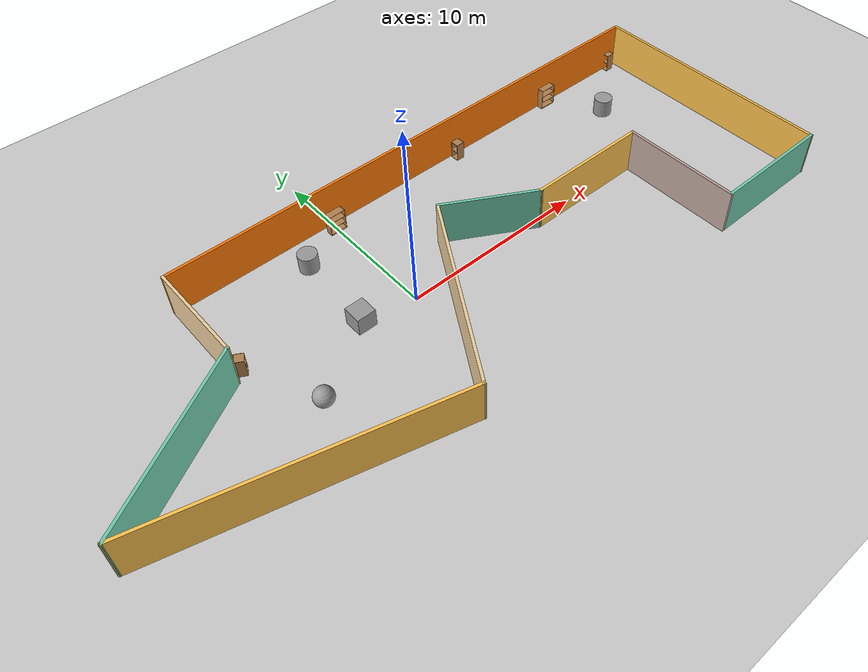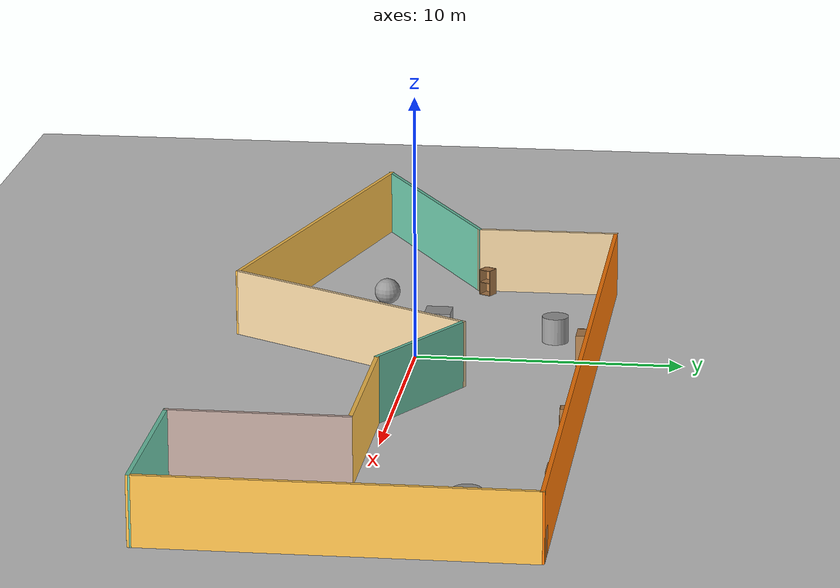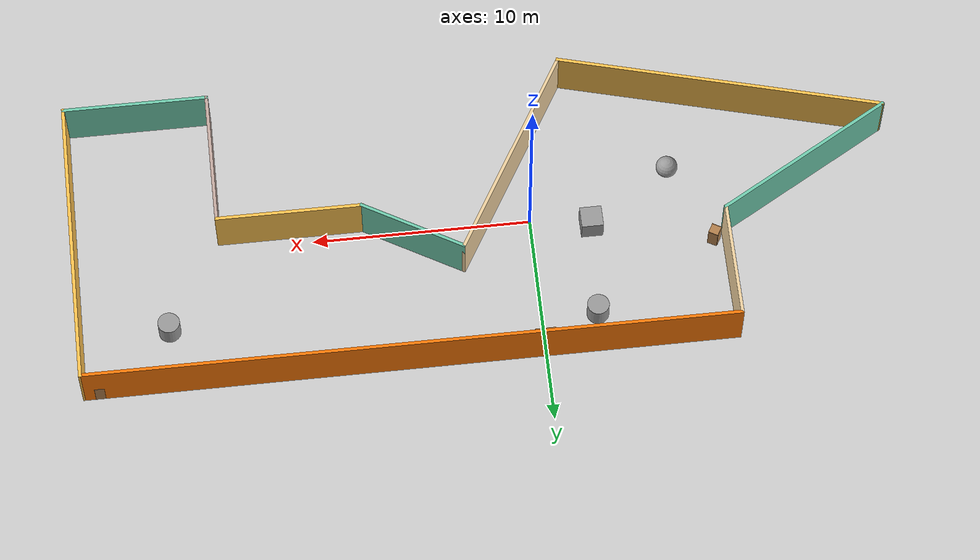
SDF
<sdf version="1.6">
 <world name="default">
  <light name="sun" type="directional">
   <pose>0 0 10 0 -0 0</pose>
   <diffuse>0.8 0.8 0.8 1</diffuse>
   <specular>0.2 0.2 0.2 1</specular>
   <attenuation>
    <range>1000</range>
    <constant>0.9</constant>
    <linear>0.01</linear>
    <quadratic>0.001</quadratic>
   </attenuation>
   <direction>-0.5 0.1 -0.9</direction>
  </light>
  <model name="ground_plane">
   <static>1</static>
   <link name="link">
    <collision name="collision">
     <geometry><plane><normal>0 0 1</normal><size>100 100</size></plane></geometry>
     <surface>
      <contact><collide_bitmask>65535</collide_bitmask></contact>
      <friction><ode><mu>100</mu><mu2>50</mu2></ode></friction>
     </surface>
    </collision>
    <visual name="visual">
     <cast_shadows>0</cast_shadows>
     <geometry><plane><normal>0 0 1</normal><size>100 100</size></plane></geometry>
     <material>
      <script><uri>file://media/materials/scripts/gazebo.material</uri><name>Gazebo/Grey</name></script>
     </material>
    </visual>
   </link>
  </model>
  <gravity>0 0 -9.8</gravity>
  <magnetic_field>6e-06 2.3e-05 -4.2e-05</magnetic_field>
  <atmosphere type="adiabatic"/>
  <physics name="default_physics" default="0" type="ode">
   <max_step_size>0.001</max_step_size>
   <real_time_factor>1</real_time_factor>
   <real_time_update_rate>1000</real_time_update_rate>
  </physics>
  <scene><ambient>0.4 0.4 0.4 1</ambient><background>0.7 0.7 0.7 1</background><shadows>1</shadows></scene>
  <spherical_coordinates>
   <surface_model>EARTH_WGS84</surface_model>
   <latitude_deg>0</latitude_deg>
   <longitude_deg>0</longitude_deg>
   <elevation>0</elevation>
   <heading_deg>0</heading_deg>
  </spherical_coordinates>
  <model name="new_building">
   <pose>2.0966 -0.12931 0 0 -0 0</pose>
   <link name="Wall_10">
    <collision name="Wall_10_Collision">
     <geometry><box><size>6.75 0.15 2.5</size></box></geometry>
     <pose>0 0 1.25 0 -0 0</pose>
    </collision>
    <visual name="Wall_10_Visual">
     <pose>0 0 1.25 0 -0 0</pose>
     <geometry><box><size>6.75 0.15 2.5</size></box></geometry>
     <material>
      <script><uri>file://media/materials/scripts/gazebo.material</uri><name>Gazebo/Grey</name></script>
      <ambient>0.435294 0.796078 0.67451 1</ambient>
     </material>
     <meta><layer>0</layer></meta>
    </visual>
    <pose>15.4648 -6.61055 0 0 -0 0</pose>
   </link>
   <link name="Wall_11">
    <collision name="Wall_11_Collision">
     <geometry><box><size>13.6783 0.15 2.5</size></box></geometry>
     <pose>0 0 1.25 0 -0 0</pose>
    </collision>
    <visual name="Wall_11_Visual">
     <pose>0 0 1.25 0 -0 0</pose>
     <geometry><box><size>13.6783 0.15 2.5</size></box></geometry>
     <material>
      <script><uri>file://media/materials/scripts/gazebo.material</uri><name>Gazebo/Grey</name></script>
      <ambient>1 0.764706 0.305882 1</ambient>
     </material>
     <meta><layer>0</layer></meta>
    </visual>
    <pose>18.7541 0.153601 0 0 -0 1.57238</pose>
   </link>
   <link name="Wall_2">
    <collision name="Wall_2_Collision">
     <geometry><box><size>29.75 0.15 2.5</size></box></geometry>
     <pose>0 0 1.25 0 -0 0</pose>
    </collision>
    <visual name="Wall_2_Visual">
     <pose>0 0 1.25 0 -0 0</pose>
     <geometry><box><size>29.75 0.15 2.5</size></box></geometry>
     <material>
      <script><uri>file://media/materials/scripts/gazebo.material</uri><name>Gazebo/Grey</name></script>
      <ambient>0.996078 0.47451 0.0196078 1</ambient>
     </material>
     <meta><layer>0</layer></meta>
    </visual>
    <pose>3.94339 6.91775 0 0 -0 3.14159</pose>
   </link>
   <link name="Wall_3">
    <collision name="Wall_3_Collision">
     <geometry><box><size>5.5 0.15 2.5</size></box></geometry>
     <pose>0 0 1.25 0 -0 0</pose>
    </collision>
    <visual name="Wall_3_Visual">
     <pose>0 0 1.25 0 -0 0</pose>
     <geometry><box><size>5.5 0.15 2.5</size></box></geometry>
     <material>
      <script><uri>file://media/materials/scripts/gazebo.material</uri><name>Gazebo/Grey</name></script>
      <ambient>0.921569 0.807843 0.615686 1</ambient>
     </material>
     <meta><layer>0</layer></meta>
    </visual>
    <pose>-10.8566 4.24275 0 0 0 -1.5708</pose>
   </link>
   <link name="Wall_4">
    <collision name="Wall_4_Collision">
     <geometry><box><size>9.25 0.15 2.5</size></box></geometry>
     <pose>0 0 1.25 0 -0 0</pose>
    </collision>
    <visual name="Wall_4_Visual">
     <pose>0 0 1.25 0 -0 0</pose>
     <geometry><box><size>9.25 0.15 2.5</size></box></geometry>
     <material>
      <script><uri>file://media/materials/scripts/gazebo.material</uri><name>Gazebo/Grey</name></script>
      <ambient>0.435294 0.796078 0.67451 1</ambient>
     </material>
     <meta><layer>0</layer></meta>
    </visual>
    <pose>-14.797 -0.70725 0 0 0 -2.61799</pose>
   </link>
   <link name="Wall_5">
    <collision name="Wall_5_Collision">
     <geometry><box><size>15.25 0.15 2.5</size></box></geometry>
     <pose>0 0 1.25 0 -0 0</pose>
    </collision>
    <visual name="Wall_5_Visual">
     <pose>0 0 1.25 0 -0 0</pose>
     <geometry><box><size>15.25 0.15 2.5</size></box></geometry>
     <material>
      <script><uri>file://media/materials/scripts/gazebo.material</uri><name>Gazebo/Grey</name></script>
      <ambient>1 0.764706 0.305882 1</ambient>
     </material>
     <meta><layer>0</layer></meta>
    </visual>
    <pose>-11.4447 -4.93633 0 0 0 -0.261799</pose>
   </link>
   <link name="Wall_6">
    <collision name="Wall_6_Collision">
     <geometry><box><size>10.75 0.15 2.5</size></box></geometry>
     <pose>0 0 1.25 0 -0 0</pose>
    </collision>
    <visual name="Wall_6_Visual">
     <pose>0 0 1.25 0 -0 0</pose>
     <geometry><box><size>10.75 0.15 2.5</size></box></geometry>
     <material>
      <script><uri>file://media/materials/scripts/gazebo.material</uri><name>Gazebo/Grey</name></script>
      <ambient>0.921569 0.807843 0.615686 1</ambient>
     </material>
     <meta><layer>0</layer></meta>
    </visual>
    <pose>-1.50196 -2.30048 0 0 -0 1.0472</pose>
   </link>
   <link name="Wall_7">
    <collision name="Wall_7_Collision">
     <geometry><box><size>5.25 0.15 2.5</size></box></geometry>
     <pose>0 0 1.25 0 -0 0</pose>
    </collision>
    <visual name="Wall_7_Visual">
     <pose>0 0 1.25 0 -0 0</pose>
     <geometry><box><size>5.25 0.15 2.5</size></box></geometry>
     <material>
      <script><uri>file://media/materials/scripts/gazebo.material</uri><name>Gazebo/Grey</name></script>
      <ambient>0.435294 0.796078 0.67451 1</ambient>
     </material>
     <meta><layer>0</layer></meta>
    </visual>
    <pose>3.35641 1.01445 0 0 0 -0.523599</pose>
   </link>
   <link name="Wall_8">
    <collision name="Wall_8_Collision">
     <geometry><box><size>6.75 0.15 2.5</size></box></geometry>
     <pose>0 0 1.25 0 -0 0</pose>
    </collision>
    <visual name="Wall_8_Visual">
     <pose>0 0 1.25 0 -0 0</pose>
     <geometry><box><size>6.75 0.15 2.5</size></box></geometry>
     <material>
      <script><uri>file://media/materials/scripts/gazebo.material</uri><name>Gazebo/Grey</name></script>
      <ambient>1 0.764706 0.305882 1</ambient>
     </material>
     <meta><layer>0</layer></meta>
    </visual>
    <pose>8.86477 -0.260548 0 0 -0 0</pose>
   </link>
   <link name="Wall_9">
    <collision name="Wall_9_Collision">
     <geometry><box><size>6.5 0.15 2.5</size></box></geometry>
     <pose>0 0 1.25 0 -0 0</pose>
    </collision>
    <visual name="Wall_9_Visual">
     <pose>0 0 1.25 0 -0 0</pose>
     <geometry><box><size>6.5 0.15 2.5</size></box></geometry>
     <material>
      <script><uri>file://media/materials/scripts/gazebo.material</uri><name>Gazebo/Grey</name></script>
      <ambient>0.760784 0.662745 0.627451 1</ambient>
     </material>
     <meta><layer>0</layer></meta>
    </visual>
    <pose>12.1648 -3.43555 0 0 0 -1.5708</pose>
   </link>
   <static>1</static>
  </model>
  <model name="unit_sphere">
   <pose>-6.57109 -1.93598 0.5 0 -0 0</pose>
   <link name="link">
    <inertial>
     <mass>1</mass>
     <inertia><ixx>0.1</ixx><ixy>0</ixy><ixz>0</ixz><iyy>0.1</iyy><iyz>0</iyz><izz>0.1</izz></inertia>
    </inertial>
    <collision name="collision"><geometry><sphere><radius>0.5</radius></sphere></geometry></collision>
    <visual name="visual">
     <geometry><sphere><radius>0.5</radius></sphere></geometry>
     <material>
      <script><name>Gazebo/Grey</name><uri>file://media/materials/scripts/gazebo.material</uri></script>
     </material>
    </visual>
   </link>
  </model>
  <model name="unit_cylinder">
   <pose>16.8196 3.87686 0.499997 3e-06 2e-06 0</pose>
   <link name="link">
    <inertial>
     <mass>1</mass>
     <inertia><ixx>0.145833</ixx><ixy>0</ixy><ixz>0</ixz><iyy>0.145833</iyy><iyz>0</iyz><izz>0.125</izz></inertia>
    </inertial>
    <collision name="collision">
     <geometry><cylinder><radius>0.5</radius><length>1</length></cylinder></geometry>
    </collision>
    <visual name="visual">
     <geometry><cylinder><radius>0.5</radius><length>1</length></cylinder></geometry>
     <material>
      <script><name>Gazebo/Grey</name><uri>file://media/materials/scripts/gazebo.material</uri></script>
     </material>
    </visual>
   </link>
  </model>
  <model name="cabinet">
   <static>1</static>
   <link name="cabinet_bottom_plate">
    <inertial>
     <pose>0 0 -1 0 -0 0</pose>
     <inertia><ixx>2.05</ixx><ixy>0</ixy><ixz>0</ixz><iyy>2.05</iyy><iyz>0</iyz><izz>2.05</izz></inertia>
     <mass>25</mass>
    </inertial>
    <collision name="cabinet_bottom_plate_geom">
     <pose>0 0 0.01 0 -0 0</pose>
     <geometry><box><size>0.45 0.45 0.02</size></box></geometry>
    </collision>
    <visual name="cabinet_bottom_plate_geom_visual">
     <pose>0 0 0.01 0 -0 0</pose>
     <geometry><box><size>0.45 0.45 0.02</size></box></geometry>
     <material>
      <script><uri>file://media/materials/scripts/gazebo.material</uri><name>Gazebo/Wood</name></script>
     </material>
    </visual>
    <collision name="cabinet_bottom_plate_geom_cabinet_back_plate">
     <pose>0.235 0 0.51 0 -0 0</pose>
     <geometry><box><size>0.02 0.45 1.02</size></box></geometry>
    </collision>
    <visual name="cabinet_bottom_plate_geom_cabinet_back_plate_visual">
     <pose>0.235 0 0.51 0 -0 0</pose>
     <geometry><box><size>0.02 0.45 1.02</size></box></geometry>
     <material>
      <script><uri>file://media/materials/scripts/gazebo.material</uri><name>Gazebo/Wood</name></script>
     </material>
    </visual>
    <collision name="cabinet_bottom_plate_geom_cabinet_left_plate">
     <pose>0 0.235 0.51 0 -0 0</pose>
     <geometry><box><size>0.45 0.02 1.02</size></box></geometry>
    </collision>
    <visual name="cabinet_bottom_plate_geom_cabinet_left_plate_visual">
     <pose>0 0.235 0.51 0 -0 0</pose>
     <geometry><box><size>0.45 0.02 1.02</size></box></geometry>
     <material>
      <script><uri>file://media/materials/scripts/gazebo.material</uri><name>Gazebo/Wood</name></script>
     </material>
    </visual>
    <collision name="cabinet_bottom_plate_geom_cabinet_middle_plate">
     <pose>0 0 0.51 0 -0 0</pose>
     <geometry><box><size>0.45 0.45 0.02</size></box></geometry>
    </collision>
    <visual name="cabinet_bottom_plate_geom_cabinet_middle_plate_visual">
     <pose>0 0 0.51 0 -0 0</pose>
     <geometry><box><size>0.45 0.45 0.02</size></box></geometry>
     <material>
      <script><uri>file://media/materials/scripts/gazebo.material</uri><name>Gazebo/Wood</name></script>
     </material>
    </visual>
    <collision name="cabinet_bottom_plate_geom_cabinet_right_plate">
     <pose>0 -0.235 0.51 0 -0 0</pose>
     <geometry><box><size>0.45 0.02 1.02</size></box></geometry>
    </collision>
    <visual name="cabinet_bottom_plate_geom_cabinet_right_plate_visual">
     <pose>0 -0.235 0.51 0 -0 0</pose>
     <geometry><box><size>0.45 0.02 1.02</size></box></geometry>
     <material>
      <script><uri>file://media/materials/scripts/gazebo.material</uri><name>Gazebo/Wood</name></script>
     </material>
    </visual>
    <collision name="cabinet_bottom_plate_geom_cabinet_top_plate">
     <pose>0 0 1.01 0 -0 0</pose>
     <geometry><box><size>0.45 0.45 0.02</size></box></geometry>
    </collision>
    <visual name="cabinet_bottom_plate_geom_cabinet_top_plate_visual">
     <pose>0 0 1.01 0 -0 0</pose>
     <geometry><box><size>0.45 0.45 0.02</size></box></geometry>
     <material>
      <script><uri>file://media/materials/scripts/gazebo.material</uri><name>Gazebo/Wood</name></script>
     </material>
    </visual>
   </link>
   <pose>8.14153 6.41706 0 0 -0 0</pose>
  </model>
  <model name="unit_box">
   <pose>-2.76467 0.52992 0.499995 0 1e-05 0</pose>
   <link name="link">
    <inertial>
     <mass>1</mass>
     <inertia>
      <ixx>0.166667</ixx>
      <ixy>0</ixy>
      <ixz>0</ixz>
      <iyy>0.166667</iyy>
      <iyz>0</iyz>
      <izz>0.166667</izz>
     </inertia>
    </inertial>
    <collision name="collision"><geometry><box><size>1 1 1</size></box></geometry></collision>
    <visual name="visual">
     <geometry><box><size>1 1 1</size></box></geometry>
     <material>
      <script><name>Gazebo/Grey</name><uri>file://media/materials/scripts/gazebo.material</uri></script>
     </material>
    </visual>
   </link>
  </model>
  <model name="unit_cylinder_0">
   <pose>-2.53551 5.01127 0.499998 3e-06 -3e-06 0</pose>
   <link name="link">
    <inertial>
     <mass>1</mass>
     <inertia><ixx>0.145833</ixx><ixy>0</ixy><ixz>0</ixz><iyy>0.145833</iyy><iyz>0</iyz><izz>0.125</izz></inertia>
    </inertial>
    <collision name="collision">
     <geometry><cylinder><radius>0.5</radius><length>1</length></cylinder></geometry>
    </collision>
    <visual name="visual">
     <geometry><cylinder><radius>0.5</radius><length>1</length></cylinder></geometry>
     <material>
      <script><name>Gazebo/Grey</name><uri>file://media/materials/scripts/gazebo.material</uri></script>
     </material>
    </visual>
   </link>
  </model>
  <model name="cabinet_0">
   <static>1</static>
   <link name="cabinet_bottom_plate">
    <inertial>
     <pose>0 0 -1 0 -0 0</pose>
     <inertia><ixx>2.05</ixx><ixy>0</ixy><ixz>0</ixz><iyy>2.05</iyy><iyz>0</iyz><izz>2.05</izz></inertia>
     <mass>25</mass>
    </inertial>
    <collision name="cabinet_bottom_plate_geom">
     <pose>0 0 0.01 0 -0 0</pose>
     <geometry><box><size>0.45 0.45 0.02</size></box></geometry>
    </collision>
    <visual name="cabinet_bottom_plate_geom_visual">
     <pose>0 0 0.01 0 -0 0</pose>
     <geometry><box><size>0.45 0.45 0.02</size></box></geometry>
     <material>
      <script><uri>file://media/materials/scripts/gazebo.material</uri><name>Gazebo/Wood</name></script>
     </material>
    </visual>
    <collision name="cabinet_bottom_plate_geom_cabinet_back_plate">
     <pose>0.235 0 0.51 0 -0 0</pose>
     <geometry><box><size>0.02 0.45 1.02</size></box></geometry>
    </collision>
    <visual name="cabinet_bottom_plate_geom_cabinet_back_plate_visual">
     <pose>0.235 0 0.51 0 -0 0</pose>
     <geometry><box><size>0.02 0.45 1.02</size></box></geometry>
     <material>
      <script><uri>file://media/materials/scripts/gazebo.material</uri><name>Gazebo/Wood</name></script>
     </material>
    </visual>
    <collision name="cabinet_bottom_plate_geom_cabinet_left_plate">
     <pose>0 0.235 0.51 0 -0 0</pose>
     <geometry><box><size>0.45 0.02 1.02</size></box></geometry>
    </collision>
    <visual name="cabinet_bottom_plate_geom_cabinet_left_plate_visual">
     <pose>0 0.235 0.51 0 -0 0</pose>
     <geometry><box><size>0.45 0.02 1.02</size></box></geometry>
     <material>
      <script><uri>file://media/materials/scripts/gazebo.material</uri><name>Gazebo/Wood</name></script>
     </material>
    </visual>
    <collision name="cabinet_bottom_plate_geom_cabinet_middle_plate">
     <pose>0 0 0.51 0 -0 0</pose>
     <geometry><box><size>0.45 0.45 0.02</size></box></geometry>
    </collision>
    <visual name="cabinet_bottom_plate_geom_cabinet_middle_plate_visual">
     <pose>0 0 0.51 0 -0 0</pose>
     <geometry><box><size>0.45 0.45 0.02</size></box></geometry>
     <material>
      <script><uri>file://media/materials/scripts/gazebo.material</uri><name>Gazebo/Wood</name></script>
     </material>
    </visual>
    <collision name="cabinet_bottom_plate_geom_cabinet_right_plate">
     <pose>0 -0.235 0.51 0 -0 0</pose>
     <geometry><box><size>0.45 0.02 1.02</size></box></geometry>
    </collision>
    <visual name="cabinet_bottom_plate_geom_cabinet_right_plate_visual">
     <pose>0 -0.235 0.51 0 -0 0</pose>
     <geometry><box><size>0.45 0.02 1.02</size></box></geometry>
     <material>
      <script><uri>file://media/materials/scripts/gazebo.material</uri><name>Gazebo/Wood</name></script>
     </material>
    </visual>
    <collision name="cabinet_bottom_plate_geom_cabinet_top_plate">
     <pose>0 0 1.01 0 -0 0</pose>
     <geometry><box><size>0.45 0.45 0.02</size></box></geometry>
    </collision>
    <visual name="cabinet_bottom_plate_geom_cabinet_top_plate_visual">
     <pose>0 0 1.01 0 -0 0</pose>
     <geometry><box><size>0.45 0.45 0.02</size></box></geometry>
     <material>
      <script><uri>file://media/materials/scripts/gazebo.material</uri><name>Gazebo/Wood</name></script>
     </material>
    </visual>
   </link>
   <pose>-8.28349 1.8131 0 0 -0 2.62788</pose>
  </model>
  <model name="cabinet_0_clone">
   <static>1</static>
   <link name="cabinet_bottom_plate">
    <inertial>
     <pose>0 0 -1 0 -0 0</pose>
     <inertia><ixx>2.05</ixx><ixy>0</ixy><ixz>0</ixz><iyy>2.05</iyy><iyz>0</iyz><izz>2.05</izz></inertia>
     <mass>25</mass>
    </inertial>
    <collision name="cabinet_bottom_plate_geom">
     <pose>0 0 0.01 0 -0 0</pose>
     <geometry><box><size>0.45 0.45 0.02</size></box></geometry>
    </collision>
    <visual name="cabinet_bottom_plate_geom_visual">
     <pose>0 0 0.01 0 -0 0</pose>
     <geometry><box><size>0.45 0.45 0.02</size></box></geometry>
     <material>
      <script><uri>file://media/materials/scripts/gazebo.material</uri><name>Gazebo/Wood</name></script>
     </material>
    </visual>
    <collision name="cabinet_bottom_plate_geom_cabinet_back_plate">
     <pose>0.235 0 0.51 0 -0 0</pose>
     <geometry><box><size>0.02 0.45 1.02</size></box></geometry>
    </collision>
    <visual name="cabinet_bottom_plate_geom_cabinet_back_plate_visual">
     <pose>0.235 0 0.51 0 -0 0</pose>
     <geometry><box><size>0.02 0.45 1.02</size></box></geometry>
     <material>
      <script><uri>file://media/materials/scripts/gazebo.material</uri><name>Gazebo/Wood</name></script>
     </material>
    </visual>
    <collision name="cabinet_bottom_plate_geom_cabinet_left_plate">
     <pose>0 0.235 0.51 0 -0 0</pose>
     <geometry><box><size>0.45 0.02 1.02</size></box></geometry>
    </collision>
    <visual name="cabinet_bottom_plate_geom_cabinet_left_plate_visual">
     <pose>0 0.235 0.51 0 -0 0</pose>
     <geometry><box><size>0.45 0.02 1.02</size></box></geometry>
     <material>
      <script><uri>file://media/materials/scripts/gazebo.material</uri><name>Gazebo/Wood</name></script>
     </material>
    </visual>
    <collision name="cabinet_bottom_plate_geom_cabinet_middle_plate">
     <pose>0 0 0.51 0 -0 0</pose>
     <geometry><box><size>0.45 0.45 0.02</size></box></geometry>
    </collision>
    <visual name="cabinet_bottom_plate_geom_cabinet_middle_plate_visual">
     <pose>0 0 0.51 0 -0 0</pose>
     <geometry><box><size>0.45 0.45 0.02</size></box></geometry>
     <material>
      <script><uri>file://media/materials/scripts/gazebo.material</uri><name>Gazebo/Wood</name></script>
     </material>
    </visual>
    <collision name="cabinet_bottom_plate_geom_cabinet_right_plate">
     <pose>0 -0.235 0.51 0 -0 0</pose>
     <geometry><box><size>0.45 0.02 1.02</size></box></geometry>
    </collision>
    <visual name="cabinet_bottom_plate_geom_cabinet_right_plate_visual">
     <pose>0 -0.235 0.51 0 -0 0</pose>
     <geometry><box><size>0.45 0.02 1.02</size></box></geometry>
     <material>
      <script><uri>file://media/materials/scripts/gazebo.material</uri><name>Gazebo/Wood</name></script>
     </material>
    </visual>
    <collision name="cabinet_bottom_plate_geom_cabinet_top_plate">
     <pose>0 0 1.01 0 -0 0</pose>
     <geometry><box><size>0.45 0.45 0.02</size></box></geometry>
    </collision>
    <visual name="cabinet_bottom_plate_geom_cabinet_top_plate_visual">
     <pose>0 0 1.01 0 -0 0</pose>
     <geometry><box><size>0.45 0.45 0.02</size></box></geometry>
     <material>
      <script><uri>file://media/materials/scripts/gazebo.material</uri><name>Gazebo/Wood</name></script>
     </material>
    </visual>
   </link>
   <pose>20.1211 6.61866 0 0 -0 0</pose>
  </model>
  <model name="bookshelf">
   <static>1</static>
   <link name="link">
    <inertial><mass>1</mass></inertial>
    <collision name="back">
     <pose>0 0.005 0.6 0 -0 0</pose>
     <geometry><box><size>0.9 0.01 1.2</size></box></geometry>
    </collision>
    <visual name="visual1">
     <pose>0 0.005 0.6 0 -0 0</pose>
     <geometry><box><size>0.9 0.01 1.2</size></box></geometry>
     <material>
      <script><uri>file://media/materials/scripts/gazebo.material</uri><name>Gazebo/Wood</name></script>
     </material>
    </visual>
    <collision name="left_side">
     <pose>0.45 -0.195 0.6 0 -0 0</pose>
     <geometry><box><size>0.02 0.4 1.2</size></box></geometry>
    </collision>
    <visual name="visual2">
     <pose>0.45 -0.195 0.6 0 -0 0</pose>
     <geometry><box><size>0.02 0.4 1.2</size></box></geometry>
     <material>
      <script><uri>file://media/materials/scripts/gazebo.material</uri><name>Gazebo/Wood</name></script>
     </material>
    </visual>
    <collision name="right_side">
     <pose>-0.45 -0.195 0.6 0 -0 0</pose>
     <geometry><box><size>0.02 0.4 1.2</size></box></geometry>
    </collision>
    <visual name="visual3">
     <pose>-0.45 -0.195 0.6 0 -0 0</pose>
     <geometry><box><size>0.02 0.4 1.2</size></box></geometry>
     <material>
      <script><uri>file://media/materials/scripts/gazebo.material</uri><name>Gazebo/Wood</name></script>
     </material>
    </visual>
    <collision name="bottom">
     <pose>0 -0.195 0.03 0 -0 0</pose>
     <geometry><box><size>0.88 0.4 0.06</size></box></geometry>
    </collision>
    <visual name="visual4">
     <pose>0 -0.195 0.03 0 -0 0</pose>
     <geometry><box><size>0.88 0.4 0.06</size></box></geometry>
     <material>
      <script><uri>file://media/materials/scripts/gazebo.material</uri><name>Gazebo/Wood</name></script>
     </material>
    </visual>
    <collision name="top">
     <pose>0 -0.195 1.19 0 -0 0</pose>
     <geometry><box><size>0.88 0.4 0.02</size></box></geometry>
    </collision>
    <visual name="visual5">
     <pose>0 -0.195 1.19 0 -0 0</pose>
     <geometry><box><size>0.88 0.4 0.02</size></box></geometry>
     <material>
      <script><uri>file://media/materials/scripts/gazebo.material</uri><name>Gazebo/Wood</name></script>
     </material>
    </visual>
    <collision name="low_shelf">
     <pose>0 -0.195 0.43 0 -0 0</pose>
     <geometry><box><size>0.88 0.4 0.02</size></box></geometry>
    </collision>
    <visual name="visual6">
     <pose>0 -0.195 0.43 0 -0 0</pose>
     <geometry><box><size>0.88 0.4 0.02</size></box></geometry>
     <material>
      <script><uri>file://media/materials/scripts/gazebo.material</uri><name>Gazebo/Wood</name></script>
     </material>
    </visual>
    <collision name="high_shelf">
     <pose>0 -0.195 0.8 0 -0 0</pose>
     <geometry><box><size>0.88 0.4 0.02</size></box></geometry>
    </collision>
    <visual name="visual7">
     <pose>0 -0.195 0.8 0 -0 0</pose>
     <geometry><box><size>0.88 0.4 0.02</size></box></geometry>
     <material>
      <script><uri>file://media/materials/scripts/gazebo.material</uri><name>Gazebo/Wood</name></script>
     </material>
    </visual>
   </link>
   <pose>14.9138 6.74173 0 0 -0 0</pose>
  </model>
  <model name="bookshelf_clone">
   <static>1</static>
   <link name="link">
    <inertial><mass>1</mass></inertial>
    <collision name="back">
     <pose>0 0.005 0.6 0 -0 0</pose>
     <geometry><box><size>0.9 0.01 1.2</size></box></geometry>
    </collision>
    <visual name="visual1">
     <pose>0 0.005 0.6 0 -0 0</pose>
     <geometry><box><size>0.9 0.01 1.2</size></box></geometry>
     <material>
      <script><uri>file://media/materials/scripts/gazebo.material</uri><name>Gazebo/Wood</name></script>
     </material>
    </visual>
    <collision name="left_side">
     <pose>0.45 -0.195 0.6 0 -0 0</pose>
     <geometry><box><size>0.02 0.4 1.2</size></box></geometry>
    </collision>
    <visual name="visual2">
     <pose>0.45 -0.195 0.6 0 -0 0</pose>
     <geometry><box><size>0.02 0.4 1.2</size></box></geometry>
     <material>
      <script><uri>file://media/materials/scripts/gazebo.material</uri><name>Gazebo/Wood</name></script>
     </material>
    </visual>
    <collision name="right_side">
     <pose>-0.45 -0.195 0.6 0 -0 0</pose>
     <geometry><box><size>0.02 0.4 1.2</size></box></geometry>
    </collision>
    <visual name="visual3">
     <pose>-0.45 -0.195 0.6 0 -0 0</pose>
     <geometry><box><size>0.02 0.4 1.2</size></box></geometry>
     <material>
      <script><uri>file://media/materials/scripts/gazebo.material</uri><name>Gazebo/Wood</name></script>
     </material>
    </visual>
    <collision name="bottom">
     <pose>0 -0.195 0.03 0 -0 0</pose>
     <geometry><box><size>0.88 0.4 0.06</size></box></geometry>
    </collision>
    <visual name="visual4">
     <pose>0 -0.195 0.03 0 -0 0</pose>
     <geometry><box><size>0.88 0.4 0.06</size></box></geometry>
     <material>
      <script><uri>file://media/materials/scripts/gazebo.material</uri><name>Gazebo/Wood</name></script>
     </material>
    </visual>
    <collision name="top">
     <pose>0 -0.195 1.19 0 -0 0</pose>
     <geometry><box><size>0.88 0.4 0.02</size></box></geometry>
    </collision>
    <visual name="visual5">
     <pose>0 -0.195 1.19 0 -0 0</pose>
     <geometry><box><size>0.88 0.4 0.02</size></box></geometry>
     <material>
      <script><uri>file://media/materials/scripts/gazebo.material</uri><name>Gazebo/Wood</name></script>
     </material>
    </visual>
    <collision name="low_shelf">
     <pose>0 -0.195 0.43 0 -0 0</pose>
     <geometry><box><size>0.88 0.4 0.02</size></box></geometry>
    </collision>
    <visual name="visual6">
     <pose>0 -0.195 0.43 0 -0 0</pose>
     <geometry><box><size>0.88 0.4 0.02</size></box></geometry>
     <material>
      <script><uri>file://media/materials/scripts/gazebo.material</uri><name>Gazebo/Wood</name></script>
     </material>
    </visual>
    <collision name="high_shelf">
     <pose>0 -0.195 0.8 0 -0 0</pose>
     <geometry><box><size>0.88 0.4 0.02</size></box></geometry>
    </collision>
    <visual name="visual7">
     <pose>0 -0.195 0.8 0 -0 0</pose>
     <geometry><box><size>0.88 0.4 0.02</size></box></geometry>
     <material>
      <script><uri>file://media/materials/scripts/gazebo.material</uri><name>Gazebo/Wood</name></script>
     </material>
    </visual>
   </link>
   <pose>-0.004072 6.43716 0 0 -0 0</pose>
  </model>
 </world>
</sdf>
